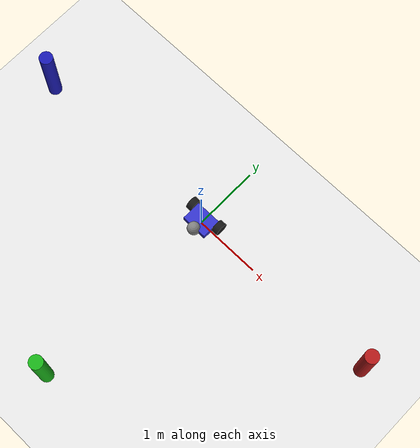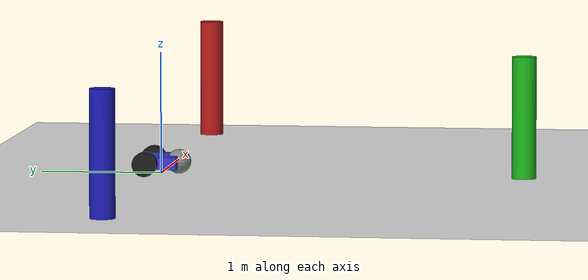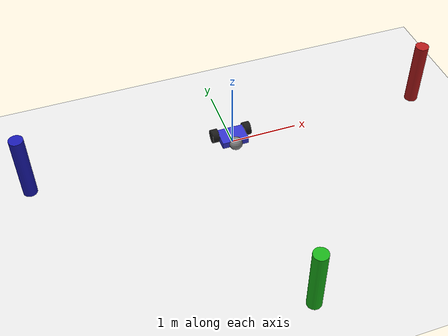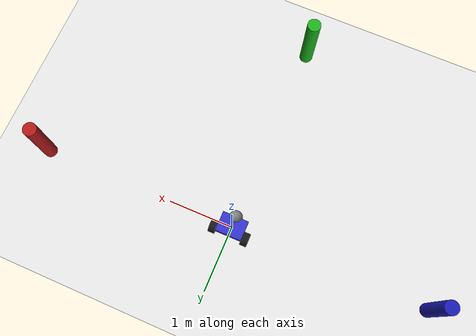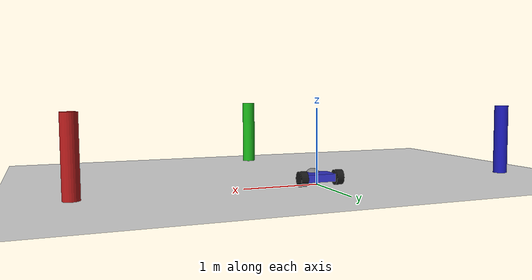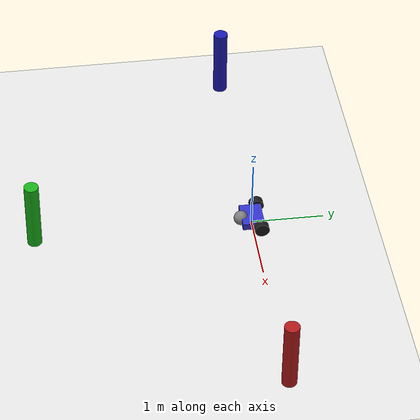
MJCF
<mujoco model="calibration_scene">
  <option timestep="0.002" gravity="0 0 -9.81" integrator="RK4"/>

  <default>
    <joint armature="0.01" damping="0.5"/>
    <geom solref="0.02 1" friction="1.0 0.005 0.0001"/>
  </default>

  <visual>
    <headlight active="1"/>
    <map/>
  </visual>

  <worldbody>
    <geom name="floor" type="plane" size="6 6 0.1" rgba=".9 .9 .9 1"/>

    <light pos="0 0 6" dir="0 0 -1" diffuse="0.8 0.8 0.8"/>

    <!-- Top-down global camera for reference -->
    <camera name="global_cam" pos="0 0 8" fovy="55"/>

    <!-- Robot body -->
    <body name="robot" pos="0 0 0.1">
      <joint type="free"/>

      <geom type="box" size="0.2 0.15 0.05" rgba="0.2 0.2 0.8 1" mass="5"/>

      <camera name="robot_cam" pos="0 -0.22 0.1" euler="90 180 0" fovy="90"/>

      <body name="wheel_right" pos="0.25 0.1 0">
        <joint name="joint_right" axis="1 0 0"/>
        <geom type="cylinder" size="0.1 0.05" euler="0 90 0" rgba="0.1 0.1 0.1 1"/>
      </body>

      <body name="wheel_left" pos="-0.25 0.1 0">
        <joint name="joint_left" axis="1 0 0"/>
        <geom type="cylinder" size="0.1 0.05" euler="0 90 0" rgba="0.1 0.1 0.1 1"/>
      </body>

      <geom name="caster" type="sphere" size="0.1" pos="0 -0.15 0" rgba="0.5 0.5 0.5 1" friction="0 0 0"/>
    </body>

    <!-- Reference markers -->
    <body name="marker_forward" pos="0 -3.0 0.5">
       <geom type="cylinder" size="0.1 0.5" rgba="0.1 0.7 0.1 1"/>
    </body>
    <body name="marker_left" pos="-3.0 0.0 0.5">
       <geom type="cylinder" size="0.1 0.5" rgba="0.1 0.1 0.7 1"/>
    </body>
    <body name="marker_right" pos="3.0 0.0 0.5">
       <geom type="cylinder" size="0.1 0.5" rgba="0.7 0.1 0.1 1"/>
    </body>

  </worldbody>

  <actuator>
    <velocity name="motor_right" joint="joint_right" kv="20"/>
    <velocity name="motor_left" joint="joint_left" kv="20"/>
  </actuator>

</mujoco>
